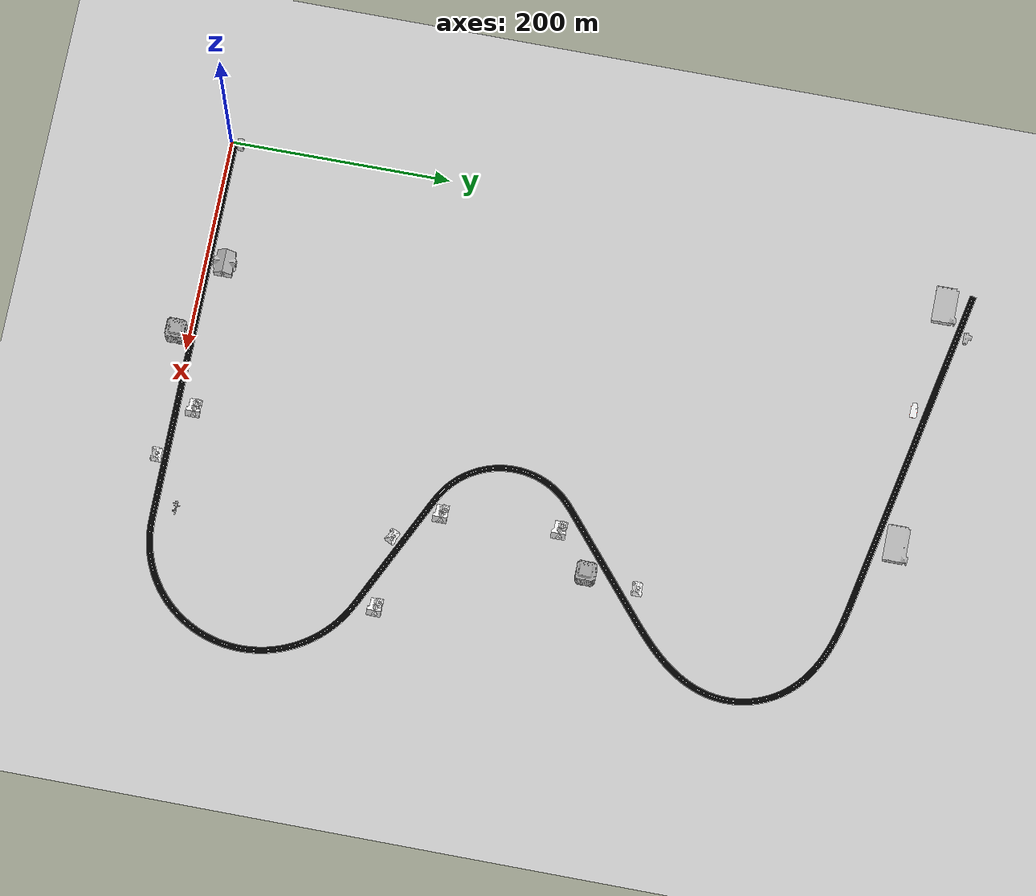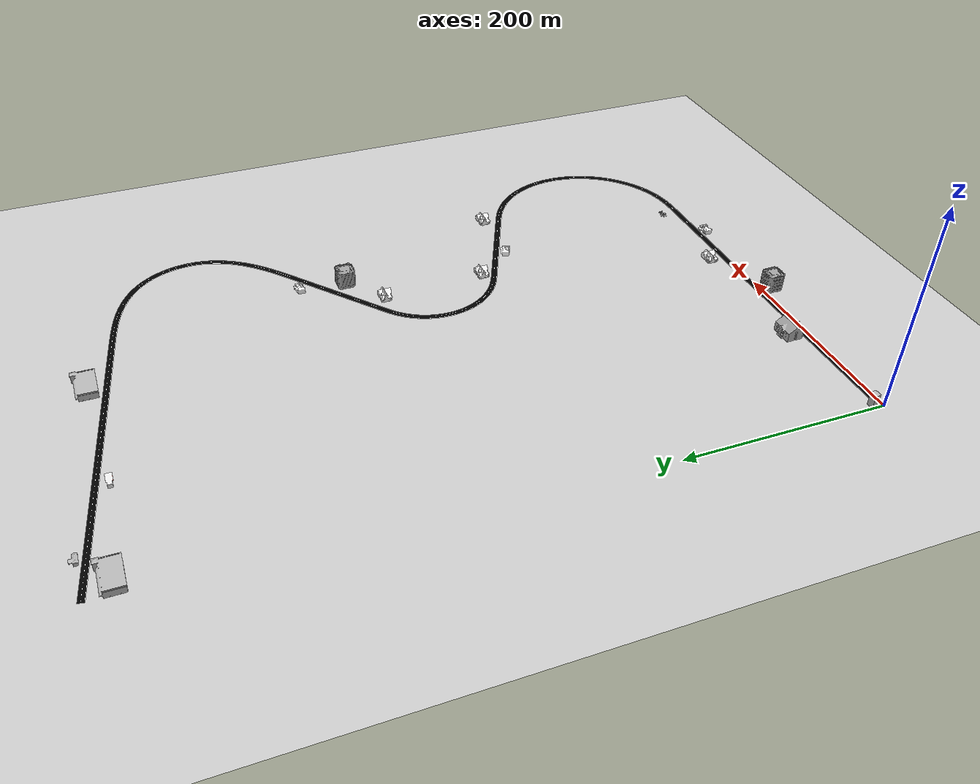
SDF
<sdf version="1.6">
 <world name="default">
  <model name="ground_plane">
   <pose>-500 0 0 0 -0 0</pose>
   <static>1</static>
   <link name="link">
    <collision name="collision">
     <geometry><plane><normal>0 0 1</normal><size>100 100</size></plane></geometry>
     <surface>
      <contact><collide_bitmask>65535</collide_bitmask></contact>
      <friction><ode><mu>100</mu><mu2>50</mu2></ode></friction>
     </surface>
    </collision>
    <visual name="visual">
     <cast_shadows>0</cast_shadows>
     <geometry><plane><normal>0 0 1</normal><size>100 100</size></plane></geometry>
     <material>
      <script><uri>file://media/materials/scripts/gazebo.material</uri><name>Gazebo/Grey</name></script>
     </material>
    </visual>
   </link>
  </model>
  <light name="sun" type="directional">
   <pose>0 0 10 0 -0 0</pose>
   <diffuse>0.8 0.8 0.8 1</diffuse>
   <specular>0.2 0.2 0.2 1</specular>
   <attenuation>
    <range>1000</range>
    <constant>0.9</constant>
    <linear>0.01</linear>
    <quadratic>0.001</quadratic>
   </attenuation>
   <direction>-0.5 0.1 -0.9</direction>
  </light>
  <model name="Table1">
   <link name="table">
    <inertial>
     <mass>10000</mass>
     <inertia>
      <ixx>1.33333e+06</ixx>
      <ixy>0</ixy>
      <ixz>0</ixz>
      <iyy>4.33333e+06</iyy>
      <iyz>0</iyz>
      <izz>3e+06</izz>
     </inertia>
    </inertial>
    <collision name="collision_table">
     <geometry><mesh><uri>file://Table/meshes/path2.dae</uri></mesh></geometry>
     <surface><friction><ode><mu>100</mu><mu2>50</mu2></ode></friction></surface>
    </collision>
    <visual name="visual_table">
     <geometry><mesh><uri>file://Table/meshes/path2.dae</uri></mesh></geometry>
    </visual>
   </link>
   <pose>0 0 -0 7.2e-05 -2e-05 0</pose>
  </model>
  <gravity>0 0 -9.8</gravity>
  <magnetic_field>6e-06 2.3e-05 -4.2e-05</magnetic_field>
  <atmosphere type="adiabatic"/>
  <physics name="default_physics" default="0" type="ode">
   <max_step_size>0.001</max_step_size>
   <real_time_factor>1</real_time_factor>
   <real_time_update_rate>1000</real_time_update_rate>
  </physics>
  <scene><ambient>0.4 0.4 0.4 1</ambient><background>0.7 0.7 0.7 1</background><shadows>1</shadows></scene>
  <audio><device>default</device></audio>
  <spherical_coordinates>
   <surface_model>EARTH_WGS84</surface_model>
   <latitude_deg>0</latitude_deg>
   <longitude_deg>0</longitude_deg>
   <elevation>0</elevation>
   <heading_deg>0</heading_deg>
  </spherical_coordinates>
  <model name="law_office">
   <static>1</static>
   <link name="link">
    <collision name="collision">
     <pose>0 0 6.96244 0 -0 0</pose>
     <geometry><box><size>6.84401 5.43165 13.9249</size></box></geometry>
    </collision>
    <visual name="visual">
     <geometry><mesh><uri>model://law_office/meshes/law_office.dae</uri></mesh></geometry>
    </visual>
   </link>
   <pose>3.85243 9.55294 0 0 -0 0</pose>
  </model>
  <model name="apartment">
   <static>1</static>
   <link name="link">
    <collision name="collision">
     <geometry><mesh><uri>model://apartment/meshes/apartment.dae</uri></mesh></geometry>
    </collision>
    <visual name="visual">
     <geometry><mesh><uri>model://apartment/meshes/apartment.dae</uri></mesh></geometry>
    </visual>
   </link>
   <pose>116.085 18.0589 0 0 -0 1.57705</pose>
  </model>
  <model name="Office Building">
   <static>1</static>
   <link name="link">
    <collision name="collision">
     <geometry><mesh><uri>model://office_building/meshes/office_building.dae</uri></mesh></geometry>
    </collision>
    <visual name="visual">
     <geometry><mesh><uri>model://office_building/meshes/office_building.dae</uri></mesh></geometry>
    </visual>
   </link>
   <pose>187.244 -11.1294 0 0 -0 0</pose>
  </model>
  <model name="House 1">
   <static>1</static>
   <link name="link">
    <collision name="collision">
     <geometry><mesh><uri>model://house_1/meshes/house_1.dae</uri><scale>1.5 1.5 1.5</scale></mesh></geometry>
    </collision>
    <visual name="visual">
     <geometry><mesh><uri>model://house_1/meshes/house_1.dae</uri><scale>1.5 1.5 1.5</scale></mesh></geometry>
     <material>
      <script>
       <uri>model://house_1/materials/scripts</uri>
       <uri>model://house_1/materials/textures</uri>
       <name>House_1/Diffuse</name>
      </script>
      <shader type="normal_map_tangent_space"><normal_map>House_1_Normal.png</normal_map></shader>
     </material>
    </visual>
   </link>
   <pose>253.005 18.8533 0 0 -0 0</pose>
  </model>
  <model name="House 2">
   <static>1</static>
   <link name="link">
    <collision name="collision">
     <geometry><mesh><uri>model://house_2/meshes/house_2.dae</uri><scale>1.5 1.5 1.5</scale></mesh></geometry>
    </collision>
    <visual name="visual">
     <geometry><mesh><uri>model://house_2/meshes/house_2.dae</uri><scale>1.5 1.5 1.5</scale></mesh></geometry>
     <material>
      <script>
       <uri>model://house_2/materials/scripts</uri>
       <uri>model://house_2/materials/textures</uri>
       <uri>model://house_1/materials/textures</uri>
       <name>House_2/Diffuse</name>
      </script>
      <shader type="normal_map_tangent_space">
       <normal_map>model://house_1/materials/textures/House_1_Normal.png</normal_map>
      </shader>
     </material>
    </visual>
   </link>
   <pose>300 -5.70142 0 0 -0 0</pose>
  </model>
  <model name="playground">
   <static>1</static>
   <link name="link">
    <collision name="collision">
     <geometry><mesh><uri>model://playground/meshes/playground.dae</uri></mesh></geometry>
    </collision>
    <visual name="visual">
     <geometry><mesh><uri>model://playground/meshes/playground.dae</uri></mesh></geometry>
    </visual>
   </link>
   <pose>346.035 21.3642 0 0 -0 0</pose>
  </model>
  <model name="House 2_0">
   <static>1</static>
   <link name="link">
    <collision name="collision">
     <geometry><mesh><uri>model://house_2/meshes/house_2.dae</uri><scale>1.5 1.5 1.5</scale></mesh></geometry>
    </collision>
    <visual name="visual">
     <geometry><mesh><uri>model://house_2/meshes/house_2.dae</uri><scale>1.5 1.5 1.5</scale></mesh></geometry>
     <material>
      <script>
       <uri>model://house_2/materials/scripts</uri>
       <uri>model://house_2/materials/textures</uri>
       <uri>model://house_1/materials/textures</uri>
       <name>House_2/Diffuse</name>
      </script>
      <shader type="normal_map_tangent_space">
       <normal_map>model://house_1/materials/textures/House_1_Normal.png</normal_map>
      </shader>
     </material>
    </visual>
   </link>
   <pose>334.851 214.594 0 0 0 -0.421062</pose>
  </model>
  <model name="House 1_1">
   <static>1</static>
   <link name="link">
    <collision name="collision">
     <geometry><mesh><uri>model://house_1/meshes/house_1.dae</uri><scale>1.5 1.5 1.5</scale></mesh></geometry>
    </collision>
    <visual name="visual">
     <geometry><mesh><uri>model://house_1/meshes/house_1.dae</uri><scale>1.5 1.5 1.5</scale></mesh></geometry>
     <material>
      <script>
       <uri>model://house_1/materials/scripts</uri>
       <uri>model://house_1/materials/textures</uri>
       <name>House_1/Diffuse</name>
      </script>
      <shader type="normal_map_tangent_space"><normal_map>House_1_Normal.png</normal_map></shader>
     </material>
    </visual>
   </link>
   <pose>307.573 252.767 0 0 -0 0</pose>
  </model>
  <model name="House 1_0">
   <static>1</static>
   <link name="link">
    <collision name="collision">
     <geometry><mesh><uri>model://house_1/meshes/house_1.dae</uri><scale>1.5 1.5 1.5</scale></mesh></geometry>
    </collision>
    <visual name="visual">
     <geometry><mesh><uri>model://house_1/meshes/house_1.dae</uri><scale>1.5 1.5 1.5</scale></mesh></geometry>
     <material>
      <script>
       <uri>model://house_1/materials/scripts</uri>
       <uri>model://house_1/materials/textures</uri>
       <name>House_1/Diffuse</name>
      </script>
      <shader type="normal_map_tangent_space"><normal_map>House_1_Normal.png</normal_map></shader>
     </material>
    </visual>
   </link>
   <pose>402.143 212.622 0 0 -0 0</pose>
  </model>
  <model name="House 1_2">
   <static>1</static>
   <link name="link">
    <collision name="collision">
     <geometry><mesh><uri>model://house_1/meshes/house_1.dae</uri><scale>1.5 1.5 1.5</scale></mesh></geometry>
    </collision>
    <visual name="visual">
     <geometry><mesh><uri>model://house_1/meshes/house_1.dae</uri><scale>1.5 1.5 1.5</scale></mesh></geometry>
     <material>
      <script>
       <uri>model://house_1/materials/scripts</uri>
       <uri>model://house_1/materials/textures</uri>
       <name>House_1/Diffuse</name>
      </script>
      <shader type="normal_map_tangent_space"><normal_map>House_1_Normal.png</normal_map></shader>
     </material>
    </visual>
   </link>
   <pose>302.747 358.245 0 0 -0 0</pose>
  </model>
  <model name="House 2_1">
   <static>1</static>
   <link name="link">
    <collision name="collision">
     <geometry><mesh><uri>model://house_2/meshes/house_2.dae</uri><scale>1.5 1.5 1.5</scale></mesh></geometry>
    </collision>
    <visual name="visual">
     <geometry><mesh><uri>model://house_2/meshes/house_2.dae</uri><scale>1.5 1.5 1.5</scale></mesh></geometry>
     <material>
      <script>
       <uri>model://house_2/materials/scripts</uri>
       <uri>model://house_2/materials/textures</uri>
       <uri>model://house_1/materials/textures</uri>
       <name>House_2/Diffuse</name>
      </script>
      <shader type="normal_map_tangent_space">
       <normal_map>model://house_1/materials/textures/House_1_Normal.png</normal_map>
      </shader>
     </material>
    </visual>
   </link>
   <pose>341.524 434.395 0 0 -0 0</pose>
  </model>
  <model name="Office Building_0">
   <static>1</static>
   <link name="link">
    <collision name="collision">
     <geometry><mesh><uri>model://office_building/meshes/office_building.dae</uri></mesh></geometry>
    </collision>
    <visual name="visual">
     <geometry><mesh><uri>model://office_building/meshes/office_building.dae</uri></mesh></geometry>
    </visual>
   </link>
   <pose>338.559 388.606 0 0 -0 0</pose>
  </model>
  <model name="Gas Station">
   <static>1</static>
   <link name="link">
    <collision name="collision">
     <geometry><mesh><uri>model://gas_station/meshes/gas_station.dae</uri></mesh></geometry>
    </collision>
    <visual name="visual">
     <geometry><mesh><uri>model://gas_station/meshes/gas_station.dae</uri></mesh></geometry>
     <material>
      <script>
       <uri>model://gas_station/materials/scripts</uri>
       <uri>model://gas_station/materials/textures</uri>
       <name>GasStation/Diffuse</name>
      </script>
      <shader type="normal_map_tangent_space"><normal_map>GasStation_Normal.png</normal_map></shader>
     </material>
    </visual>
   </link>
   <pose>134.7 646.041 0 0 -0 0</pose>
  </model>
  <model name="post_office">
   <static>1</static>
   <link name="link">
    <collision name="collision">
     <geometry><mesh><uri>model://post_office/meshes/post_office.dae</uri></mesh></geometry>
    </collision>
    <visual name="visual">
     <geometry><mesh><uri>model://post_office/meshes/post_office.dae</uri></mesh></geometry>
    </visual>
   </link>
   <pose>60.3075 679.866 0 0 -0 0</pose>
  </model>
  <model name="grocery_store">
   <static>1</static>
   <link name="link">
    <collision name="collision">
     <pose>0 0 4.04605 0 -0 0</pose>
     <geometry><box><size>32.1985 17.5425 8.09209</size></box></geometry>
    </collision>
    <visual name="visual">
     <pose>0 -1.96155 0 0 -0 0</pose>
     <geometry><mesh><uri>model://grocery_store/meshes/grocery_store.dae</uri></mesh></geometry>
    </visual>
   </link>
   <pose>34.1588 655.63 0 0 -0 0</pose>
  </model>
  <model name="grocery_store_0">
   <static>1</static>
   <link name="link">
    <collision name="collision">
     <pose>0 0 4.04605 0 -0 0</pose>
     <geometry><box><size>32.1985 17.5425 8.09209</size></box></geometry>
    </collision>
    <visual name="visual">
     <pose>0 -1.96155 0 0 -0 0</pose>
     <geometry><mesh><uri>model://grocery_store/meshes/grocery_store.dae</uri></mesh></geometry>
    </visual>
   </link>
   <pose>260.057 650.765 0 0 -0 0</pose>
  </model>
 </world>
</sdf>
